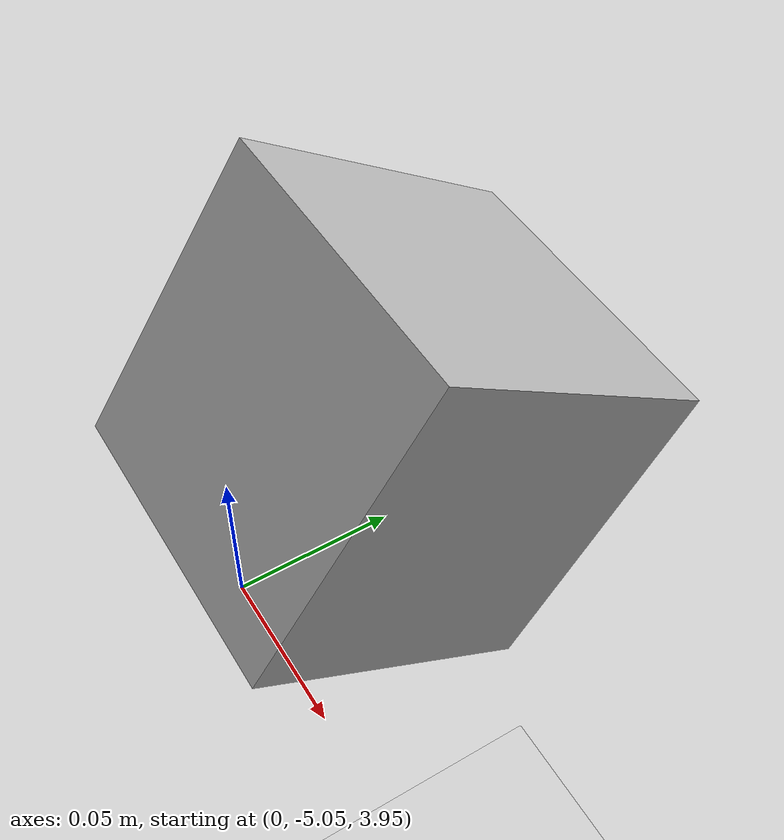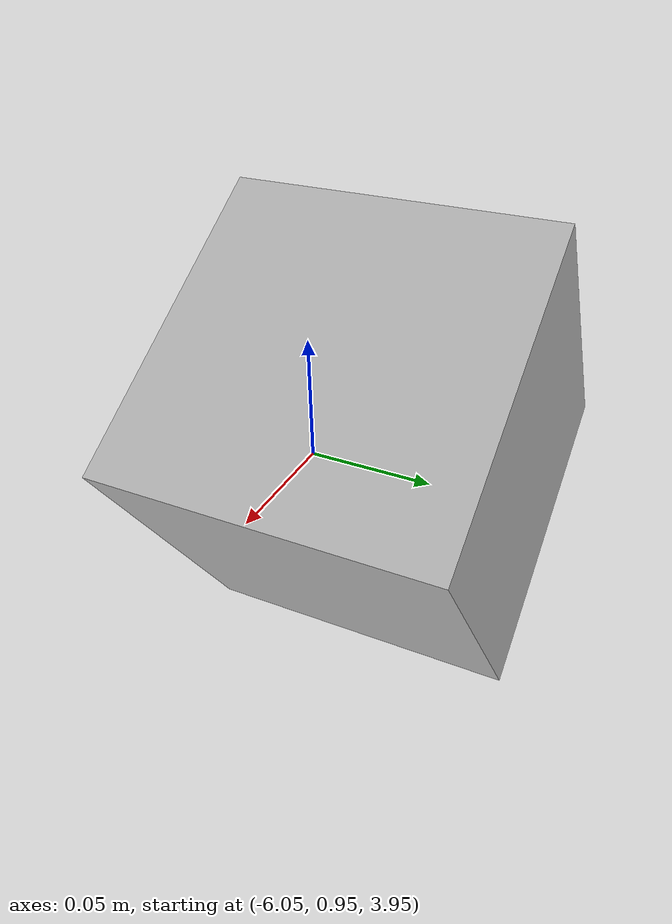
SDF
<?xml version="1.0" ?>
<sdf version="1.4">
  <world name="default">
    <include>
      <uri>model://ground_plane</uri>
    </include>
    <include>
      <uri>model://sun</uri>
    </include>

    <model name='camera_left'>
      <static>true</static>
      <pose>-6 1 4 0 0.5880 0</pose>
      <link name='link'>
        <visual name='visual'>
          <geometry>
            <box>
              <size>0.1 0.1 0.1</size>
            </box>
          </geometry>
        </visual>
        <sensor name='my_camera' type='camera'>
          <camera>
            <save enabled="false">
              <path>/home/kript0n/diploma_movement_left</path>
            </save>
            <horizontal_fov>1.047</horizontal_fov>
            <image>
              <width>1366</width>
              <height>768</height>
            </image>
            <clip>
              <near>0.1</near>
              <far>100</far>
            </clip>
          </camera>
          <always_on>0</always_on>
          <update_rate>30</update_rate>
        </sensor>
      </link>
    </model>

    <model name='camera_front'>
      <static>true</static>
      <pose>0 -5 4 0 0.5880 1.57</pose>
      <link name='link'>
        <visual name='visual'>
          <geometry>
            <box>
              <size>0.1 0.1 0.1</size>
            </box>
          </geometry>
        </visual>
        <sensor name='my_camera' type='camera'>
          <camera>
            <save enabled="false">
              <path>/home/kript0n/diploma_movement_front</path>
            </save>
            <horizontal_fov>1.047</horizontal_fov>
            <image>
              <width>1366</width>
              <height>768</height>
            </image>
            <clip>
              <near>0.1</near>
              <far>100</far>
            </clip>
          </camera>
          <always_on>0</always_on>
          <update_rate>30</update_rate>
        </sensor>
      </link>
    </model>

  </world>
</sdf>
